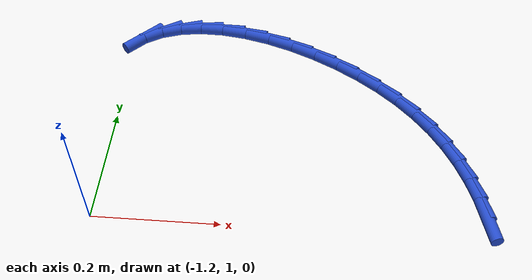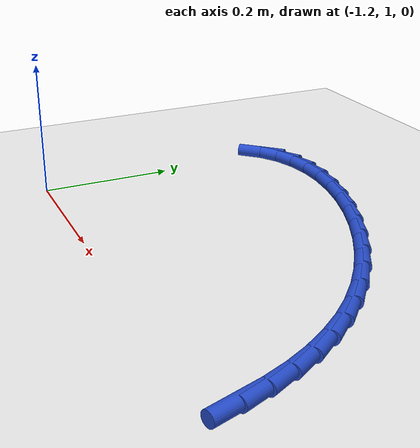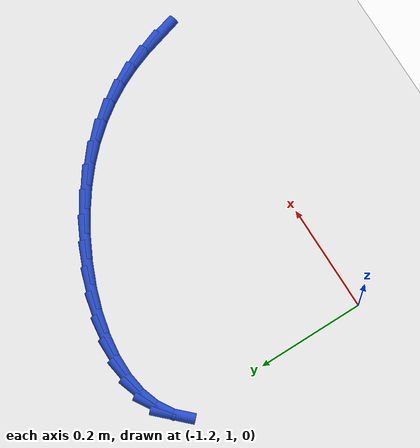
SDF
<sdf version="1.6">
 <world name="default">
  <model name="ground_plane">
   <static>1</static>
   <link name="link">
    <collision name="collision">
     <geometry><plane><normal>0 0 1</normal><size>100 100</size></plane></geometry>
     <surface><friction><ode><mu>100</mu><mu2>50</mu2></ode></friction></surface>
    </collision>
    <visual name="visual">
     <cast_shadows>0</cast_shadows>
     <geometry><plane><normal>0 0 1</normal><size>100 100</size></plane></geometry>
     <material>
      <script><uri>file://media/materials/scripts/gazebo.material</uri><name>Gazebo/WhiteGlow</name></script>
     </material>
    </visual>
   </link>
  </model>
  <model name="line">
   <link name="link_37">
    <pose>-0.6004991371063935 1.0326772013467829 0.01 0 1.57 -1.2987324777566824</pose>
    <collision name="collision">
     <geometry><cylinder><radius>0.01</radius><length>0.08</length></cylinder></geometry>
    </collision>
    <visual name="visual">
     <material>
      <script><name>Gazebo/Blue</name><uri>file://media/materials/scripts/gazebo.material</uri></script>
     </material>
     <geometry><cylinder><radius>0.01</radius><length>0.08</length></cylinder></geometry>
    </visual>
   </link>
   <link name="link_38">
    <pose>-0.61051516490328 1.0685793439331328 0.01 0 1.57 -1.2219422263099349</pose>
    <collision name="collision">
     <geometry><cylinder><radius>0.01</radius><length>0.08</length></cylinder></geometry>
    </collision>
    <visual name="visual">
     <material>
      <script><name>Gazebo/Blue</name><uri>file://media/materials/scripts/gazebo.material</uri></script>
     </material>
     <geometry><cylinder><radius>0.01</radius><length>0.08</length></cylinder></geometry>
    </visual>
   </link>
   <link name="link_39">
    <pose>-0.6232248977863851 1.10352206823395 0.01 0 1.57 -1.1399939613351844</pose>
    <collision name="collision">
     <geometry><cylinder><radius>0.01</radius><length>0.08</length></cylinder></geometry>
    </collision>
    <visual name="visual">
     <material>
      <script><name>Gazebo/Blue</name><uri>file://media/materials/scripts/gazebo.material</uri></script>
     </material>
     <geometry><cylinder><radius>0.01</radius><length>0.08</length></cylinder></geometry>
    </visual>
   </link>
   <link name="link_40">
    <pose>-0.6388100621727599 1.137432900158027 0.01 0 1.57 -1.054048534012462</pose>
    <collision name="collision">
     <geometry><cylinder><radius>0.01</radius><length>0.08</length></cylinder></geometry>
    </collision>
    <visual name="visual">
     <material>
      <script><name>Gazebo/Blue</name><uri>file://media/materials/scripts/gazebo.material</uri></script>
     </material>
     <geometry><cylinder><radius>0.01</radius><length>0.08</length></cylinder></geometry>
    </visual>
   </link>
   <link name="link_41">
    <pose>-0.6574523844794549 1.1702393656141554 0.01 0 1.57 -0.9655985340125656</pose>
    <collision name="collision">
     <geometry><cylinder><radius>0.01</radius><length>0.08</length></cylinder></geometry>
    </collision>
    <visual name="visual">
     <material>
      <script><name>Gazebo/Blue</name><uri>file://media/materials/scripts/gazebo.material</uri></script>
     </material>
     <geometry><cylinder><radius>0.01</radius><length>0.08</length></cylinder></geometry>
    </visual>
   </link>
   <link name="link_42">
    <pose>-0.6793335911235211 1.201868990511129 0.01 0 1.57 -0.876351604667606</pose>
    <collision name="collision">
     <geometry><cylinder><radius>0.01</radius><length>0.08</length></cylinder></geometry>
    </collision>
    <visual name="visual">
     <material>
      <script><name>Gazebo/Blue</name><uri>file://media/materials/scripts/gazebo.material</uri></script>
     </material>
     <geometry><cylinder><radius>0.01</radius><length>0.08</length></cylinder></geometry>
    </visual>
   </link>
   <link name="link_43">
    <pose>-0.7046354085220089 1.2322493007577395 0.01 0 1.57 -0.7880613698015566</pose>
    <collision name="collision">
     <geometry><cylinder><radius>0.01</radius><length>0.08</length></cylinder></geometry>
    </collision>
    <visual name="visual">
     <material>
      <script><name>Gazebo/Blue</name><uri>file://media/materials/scripts/gazebo.material</uri></script>
     </material>
     <geometry><cylinder><radius>0.01</radius><length>0.08</length></cylinder></geometry>
    </visual>
   </link>
   <link name="link_44">
    <pose>-0.7335395630919697 1.2613078222627805 0.01 0 1.57 -0.7024722750563569</pose>
    <collision name="collision">
     <geometry><cylinder><radius>0.01</radius><length>0.08</length></cylinder></geometry>
    </collision>
    <visual name="visual">
     <material>
      <script><name>Gazebo/Blue</name><uri>file://media/materials/scripts/gazebo.material</uri></script>
     </material>
     <geometry><cylinder><radius>0.01</radius><length>0.08</length></cylinder></geometry>
    </visual>
   </link>
   <link name="link_45">
    <pose>-0.766210639938338 1.288964654555795 0.01 0 1.57 -0.6230756304661877</pose>
    <collision name="collision">
     <geometry><cylinder><radius>0.01</radius><length>0.08</length></cylinder></geometry>
    </collision>
    <visual name="visual">
     <material>
      <script><name>Gazebo/Blue</name><uri>file://media/materials/scripts/gazebo.material</uri></script>
     </material>
     <geometry><cylinder><radius>0.01</radius><length>0.08</length></cylinder></geometry>
    </visual>
   </link>
   <link name="link_46">
    <pose>-0.8023716161867794 1.3149485729368022 0.01 0 1.57 -0.5496998231448647</pose>
    <collision name="collision">
     <geometry><cylinder><radius>0.01</radius><length>0.08</length></cylinder></geometry>
    </collision>
    <visual name="visual">
     <material>
      <script><name>Gazebo/Blue</name><uri>file://media/materials/scripts/gazebo.material</uri></script>
     </material>
     <geometry><cylinder><radius>0.01</radius><length>0.08</length></cylinder></geometry>
    </visual>
   </link>
   <link name="link_47">
    <pose>-0.8412758296755972 1.3387848840661558 0.01 0 1.57 -0.4785092494315749</pose>
    <collision name="collision">
     <geometry><cylinder><radius>0.01</radius><length>0.08</length></cylinder></geometry>
    </collision>
    <visual name="visual">
     <material>
      <script><name>Gazebo/Blue</name><uri>file://media/materials/scripts/gazebo.material</uri></script>
     </material>
     <geometry><cylinder><radius>0.01</radius><length>0.08</length></cylinder></geometry>
    </visual>
   </link>
   <link name="link_48">
    <pose>-0.8821538640122243 1.359989036458762 0.01 0 1.57 -0.40593747862610907</pose>
    <collision name="collision">
     <geometry><cylinder><radius>0.01</radius><length>0.08</length></cylinder></geometry>
    </collision>
    <visual name="visual">
     <material>
      <script><name>Gazebo/Blue</name><uri>file://media/materials/scripts/gazebo.material</uri></script>
     </material>
     <geometry><cylinder><radius>0.01</radius><length>0.08</length></cylinder></geometry>
    </visual>
   </link>
   <link name="link_49">
    <pose>-0.9242363028040939 1.3780764786295279 0.01 0 1.57 -0.32837622999600635</pose>
    <collision name="collision">
     <geometry><cylinder><radius>0.01</radius><length>0.08</length></cylinder></geometry>
    </collision>
    <visual name="visual">
     <material>
      <script><name>Gazebo/Blue</name><uri>file://media/materials/scripts/gazebo.material</uri></script>
     </material>
     <geometry><cylinder><radius>0.01</radius><length>0.08</length></cylinder></geometry>
    </visual>
   </link>
   <link name="link_50">
    <pose>-0.9667537296586401 1.3925626590933604 0.01 0 1.57 -0.2417323072473185</pose>
    <collision name="collision">
     <geometry><cylinder><radius>0.01</radius><length>0.08</length></cylinder></geometry>
    </collision>
    <visual name="visual">
     <material>
      <script><name>Gazebo/Blue</name><uri>file://media/materials/scripts/gazebo.material</uri></script>
     </material>
     <geometry><cylinder><radius>0.01</radius><length>0.08</length></cylinder></geometry>
    </visual>
   </link>
   <link name="link_51">
    <pose>-1.008936728183296 1.4029630263651662 0.01 0 1.57 -0.14097970569885052</pose>
    <collision name="collision">
     <geometry><cylinder><radius>0.01</radius><length>0.08</length></cylinder></geometry>
    </collision>
    <visual name="visual">
     <material>
      <script><name>Gazebo/Blue</name><uri>file://media/materials/scripts/gazebo.material</uri></script>
     </material>
     <geometry><cylinder><radius>0.01</radius><length>0.08</length></cylinder></geometry>
    </visual>
   </link>
   <link name="link_52">
    <pose>-1.0500158819854946 1.4087930289598525 0.01 0 1.57 -0.019767066252055987</pose>
    <collision name="collision">
     <geometry><cylinder><radius>0.01</radius><length>0.08</length></cylinder></geometry>
    </collision>
    <visual name="visual">
     <material>
      <script><name>Gazebo/Blue</name><uri>file://media/materials/scripts/gazebo.material</uri></script>
     </material>
     <geometry><cylinder><radius>0.01</radius><length>0.08</length></cylinder></geometry>
    </visual>
   </link>
   <link name="link_53">
    <pose>-1.0892217746726696 1.409568115392326 0.01 0 1.57 0.1295752317281121</pose>
    <collision name="collision">
     <geometry><cylinder><radius>0.01</radius><length>0.08</length></cylinder></geometry>
    </collision>
    <visual name="visual">
     <material>
      <script><name>Gazebo/Blue</name><uri>file://media/materials/scripts/gazebo.material</uri></script>
     </material>
     <geometry><cylinder><radius>0.01</radius><length>0.08</length></cylinder></geometry>
    </visual>
   </link>
   <link name="link_54">
    <pose>-1.1257849898522538 1.4048037341774937 0.01 0 1.57 0.31462161438430297</pose>
    <collision name="collision">
     <geometry><cylinder><radius>0.01</radius><length>0.08</length></cylinder></geometry>
    </collision>
    <visual name="visual">
     <material>
      <script><name>Gazebo/Blue</name><uri>file://media/materials/scripts/gazebo.material</uri></script>
     </material>
     <geometry><cylinder><radius>0.01</radius><length>0.08</length></cylinder></geometry>
    </visual>
   </link>
   <link name="link_55">
    <pose>-1.1589361111316814 1.3940153338302628 0.01 0 1.57 0.538264474833401</pose>
    <collision name="collision">
     <geometry><cylinder><radius>0.01</radius><length>0.08</length></cylinder></geometry>
    </collision>
    <visual name="visual">
     <material>
      <script><name>Gazebo/Blue</name><uri>file://media/materials/scripts/gazebo.material</uri></script>
     </material>
     <geometry><cylinder><radius>0.01</radius><length>0.08</length></cylinder></geometry>
    </visual>
   </link>
   <link name="link_56">
    <pose>-1.1879057221183846 1.376718362865539 0.01 0 1.57 0.7910163124197807</pose>
    <collision name="collision">
     <geometry><cylinder><radius>0.01</radius><length>0.08</length></cylinder></geometry>
    </collision>
    <visual name="visual">
     <material>
      <script><name>Gazebo/Blue</name><uri>file://media/materials/scripts/gazebo.material</uri></script>
     </material>
     <geometry><cylinder><radius>0.01</radius><length>0.08</length></cylinder></geometry>
    </visual>
   </link>
  </model>
 </world>
</sdf>
